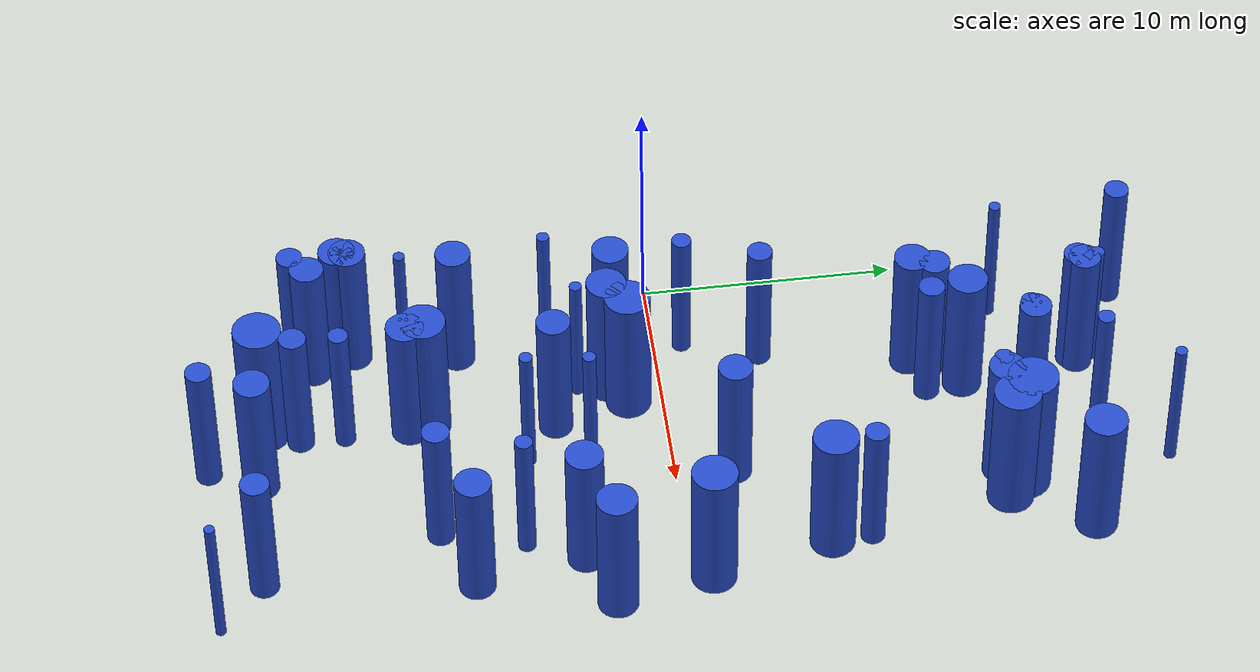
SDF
<sdf version="1.7">
 <world name="default">
  <model name="33">
   <static>1</static>
   <link name="link">
    <inertial>
     <mass>2</mass>
     <inertia><ixx>6.14607</ixx><ixy>0</ixy><ixz>0</ixz><iyy>6.14607</iyy><iyz>0</iyz><izz>0.292135</izz></inertia>
    </inertial>
    <collision name="collision">
     <geometry><cylinder><length>6</length><radius>0.540495</radius></cylinder></geometry>
     <surface><contact><collide_without_contact>1</collide_without_contact></contact></surface>
    </collision>
    <visual name="visual">
     <geometry><cylinder><length>6</length><radius>0.540495</radius></cylinder></geometry>
     <material>
      <script><uri>file://media/materials/scripts/gazebo.material</uri><name>Gazebo/Blue</name></script>
     </material>
    </visual>
    <gravity>0</gravity>
   </link>
   <pose>11.5808 -9.34368 3 0 -0 0</pose>
  </model>
  <model name="35">
   <static>1</static>
   <link name="link">
    <inertial>
     <mass>2</mass>
     <inertia><ixx>6.0268</ixx><ixy>0</ixy><ixz>0</ixz><iyy>6.0268</iyy><iyz>0</iyz><izz>0.0535936</izz></inertia>
    </inertial>
    <collision name="collision">
     <geometry><cylinder><length>6</length><radius>0.231503</radius></cylinder></geometry>
     <surface><contact><collide_without_contact>1</collide_without_contact></contact></surface>
    </collision>
    <visual name="visual">
     <geometry><cylinder><length>6</length><radius>0.231503</radius></cylinder></geometry>
     <material>
      <script><uri>file://media/materials/scripts/gazebo.material</uri><name>Gazebo/Blue</name></script>
     </material>
    </visual>
    <gravity>0</gravity>
   </link>
   <pose>11.2769 19.3033 3 0 -0 0</pose>
  </model>
  <model name="46">
   <static>1</static>
   <link name="link">
    <inertial>
     <mass>2</mass>
     <inertia><ixx>6.25968</ixx><ixy>0</ixy><ixz>0</ixz><iyy>6.25968</iyy><iyz>0</iyz><izz>0.51936</izz></inertia>
    </inertial>
    <collision name="collision">
     <geometry><cylinder><length>6</length><radius>0.720666</radius></cylinder></geometry>
     <surface><contact><collide_without_contact>1</collide_without_contact></contact></surface>
    </collision>
    <visual name="visual">
     <geometry><cylinder><length>6</length><radius>0.720666</radius></cylinder></geometry>
     <material>
      <script><uri>file://media/materials/scripts/gazebo.material</uri><name>Gazebo/Blue</name></script>
     </material>
    </visual>
    <gravity>0</gravity>
   </link>
   <pose>1.87089 -11.8641 3 0 -0 0</pose>
  </model>
  <model name="58">
   <static>1</static>
   <link name="link">
    <inertial>
     <mass>2</mass>
     <inertia><ixx>6.48296</ixx><ixy>0</ixy><ixz>0</ixz><iyy>6.48296</iyy><iyz>0</iyz><izz>0.96592</izz></inertia>
    </inertial>
    <collision name="collision">
     <geometry><cylinder><length>6</length><radius>0.982812</radius></cylinder></geometry>
     <surface><contact><collide_without_contact>1</collide_without_contact></contact></surface>
    </collision>
    <visual name="visual">
     <geometry><cylinder><length>6</length><radius>0.982812</radius></cylinder></geometry>
     <material>
      <script><uri>file://media/materials/scripts/gazebo.material</uri><name>Gazebo/Blue</name></script>
     </material>
    </visual>
    <gravity>0</gravity>
   </link>
   <pose>11.804 13.4618 3 0 -0 0</pose>
  </model>
  <model name="60">
   <static>1</static>
   <link name="link">
    <inertial>
     <mass>2</mass>
     <inertia><ixx>6.39524</ixx><ixy>0</ixy><ixz>0</ixz><iyy>6.39524</iyy><iyz>0</iyz><izz>0.790477</izz></inertia>
    </inertial>
    <collision name="collision">
     <geometry><cylinder><length>6</length><radius>0.889088</radius></cylinder></geometry>
     <surface><contact><collide_without_contact>1</collide_without_contact></contact></surface>
    </collision>
    <visual name="visual">
     <geometry><cylinder><length>6</length><radius>0.889088</radius></cylinder></geometry>
     <material>
      <script><uri>file://media/materials/scripts/gazebo.material</uri><name>Gazebo/Blue</name></script>
     </material>
    </visual>
    <gravity>0</gravity>
   </link>
   <pose>14.9939 0.797519 3 0 -0 0</pose>
  </model>
  <model name="66">
   <static>1</static>
   <link name="link">
    <inertial>
     <mass>2</mass>
     <inertia><ixx>6.22425</ixx><ixy>0</ixy><ixz>0</ixz><iyy>6.22425</iyy><iyz>0</iyz><izz>0.448499</izz></inertia>
    </inertial>
    <collision name="collision">
     <geometry><cylinder><length>6</length><radius>0.6697</radius></cylinder></geometry>
     <surface><contact><collide_without_contact>1</collide_without_contact></contact></surface>
    </collision>
    <visual name="visual">
     <geometry><cylinder><length>6</length><radius>0.6697</radius></cylinder></geometry>
     <material>
      <script><uri>file://media/materials/scripts/gazebo.material</uri><name>Gazebo/Blue</name></script>
     </material>
    </visual>
    <gravity>0</gravity>
   </link>
   <pose>2.54749 -13.4917 3 0 -0 0</pose>
  </model>
  <model name="70">
   <static>1</static>
   <link name="link">
    <inertial>
     <mass>2</mass>
     <inertia><ixx>6.07674</ixx><ixy>0</ixy><ixz>0</ixz><iyy>6.07674</iyy><iyz>0</iyz><izz>0.15348</izz></inertia>
    </inertial>
    <collision name="collision">
     <geometry><cylinder><length>6</length><radius>0.391765</radius></cylinder></geometry>
     <surface><contact><collide_without_contact>1</collide_without_contact></contact></surface>
    </collision>
    <visual name="visual">
     <geometry><cylinder><length>6</length><radius>0.391765</radius></cylinder></geometry>
     <material>
      <script><uri>file://media/materials/scripts/gazebo.material</uri><name>Gazebo/Blue</name></script>
     </material>
    </visual>
    <gravity>0</gravity>
   </link>
   <pose>6.17959 -12.5655 3 0 -0 0</pose>
  </model>
  <model name="76">
   <static>1</static>
   <link name="link">
    <inertial>
     <mass>2</mass>
     <inertia><ixx>6.25283</ixx><ixy>0</ixy><ixz>0</ixz><iyy>6.25283</iyy><iyz>0</iyz><izz>0.505667</izz></inertia>
    </inertial>
    <collision name="collision">
     <geometry><cylinder><length>6</length><radius>0.711103</radius></cylinder></geometry>
     <surface><contact><collide_without_contact>1</collide_without_contact></contact></surface>
    </collision>
    <visual name="visual">
     <geometry><cylinder><length>6</length><radius>0.711103</radius></cylinder></geometry>
     <material>
      <script><uri>file://media/materials/scripts/gazebo.material</uri><name>Gazebo/Blue</name></script>
     </material>
    </visual>
    <gravity>0</gravity>
   </link>
   <pose>8.20094 -16.0225 3 0 -0 0</pose>
  </model>
  <model name="77">
   <static>1</static>
   <link name="link">
    <inertial>
     <mass>2</mass>
     <inertia>
      <ixx>6.03098</ixx>
      <ixy>0</ixy>
      <ixz>0</ixz>
      <iyy>6.03098</iyy>
      <iyz>0</iyz>
      <izz>0.0619636</izz>
     </inertia>
    </inertial>
    <collision name="collision">
     <geometry><cylinder><length>6</length><radius>0.248925</radius></cylinder></geometry>
     <surface><contact><collide_without_contact>1</collide_without_contact></contact></surface>
    </collision>
    <visual name="visual">
     <geometry><cylinder><length>6</length><radius>0.248925</radius></cylinder></geometry>
     <material>
      <script><uri>file://media/materials/scripts/gazebo.material</uri><name>Gazebo/Blue</name></script>
     </material>
    </visual>
    <gravity>0</gravity>
   </link>
   <pose>2.03012 -4.19481 3 0 -0 0</pose>
  </model>
  <model name="82">
   <static>1</static>
   <link name="link">
    <inertial>
     <mass>2</mass>
     <inertia><ixx>6.27494</ixx><ixy>0</ixy><ixz>0</ixz><iyy>6.27494</iyy><iyz>0</iyz><izz>0.549877</izz></inertia>
    </inertial>
    <collision name="collision">
     <geometry><cylinder><length>6</length><radius>0.741537</radius></cylinder></geometry>
     <surface><contact><collide_without_contact>1</collide_without_contact></contact></surface>
    </collision>
    <visual name="visual">
     <geometry><cylinder><length>6</length><radius>0.741537</radius></cylinder></geometry>
     <material>
      <script><uri>file://media/materials/scripts/gazebo.material</uri><name>Gazebo/Blue</name></script>
     </material>
    </visual>
    <gravity>0</gravity>
   </link>
   <pose>13.4562 -3.93051 3 0 -0 0</pose>
  </model>
  <model name="93">
   <static>1</static>
   <link name="link">
    <inertial>
     <mass>2</mass>
     <inertia>
      <ixx>6.02703</ixx>
      <ixy>0</ixy>
      <ixz>0</ixz>
      <iyy>6.02703</iyy>
      <iyz>0</iyz>
      <izz>0.0540589</izz>
     </inertia>
    </inertial>
    <collision name="collision">
     <geometry><cylinder><length>6</length><radius>0.232506</radius></cylinder></geometry>
     <surface><contact><collide_without_contact>1</collide_without_contact></contact></surface>
    </collision>
    <visual name="visual">
     <geometry><cylinder><length>6</length><radius>0.232506</radius></cylinder></geometry>
     <material>
      <script><uri>file://media/materials/scripts/gazebo.material</uri><name>Gazebo/Blue</name></script>
     </material>
    </visual>
    <gravity>0</gravity>
   </link>
   <pose>2.75391 13.5982 3 0 -0 0</pose>
  </model>
  <model name="100">
   <static>1</static>
   <link name="link">
    <inertial>
     <mass>2</mass>
     <inertia><ixx>6.26324</ixx><ixy>0</ixy><ixz>0</ixz><iyy>6.26324</iyy><iyz>0</iyz><izz>0.526477</izz></inertia>
    </inertial>
    <collision name="collision">
     <geometry><cylinder><length>6</length><radius>0.725588</radius></cylinder></geometry>
     <surface><contact><collide_without_contact>1</collide_without_contact></contact></surface>
    </collision>
    <visual name="visual">
     <geometry><cylinder><length>6</length><radius>0.725588</radius></cylinder></geometry>
     <material>
      <script><uri>file://media/materials/scripts/gazebo.material</uri><name>Gazebo/Blue</name></script>
     </material>
    </visual>
    <gravity>0</gravity>
   </link>
   <pose>1.74931 -12.2597 3 0 -0 0</pose>
  </model>
  <model name="101">
   <static>1</static>
   <link name="link">
    <inertial>
     <mass>2</mass>
     <inertia><ixx>6.08143</ixx><ixy>0</ixy><ixz>0</ixz><iyy>6.08143</iyy><iyz>0</iyz><izz>0.162867</izz></inertia>
    </inertial>
    <collision name="collision">
     <geometry><cylinder><length>6</length><radius>0.403568</radius></cylinder></geometry>
     <surface><contact><collide_without_contact>1</collide_without_contact></contact></surface>
    </collision>
    <visual name="visual">
     <geometry><cylinder><length>6</length><radius>0.403568</radius></cylinder></geometry>
     <material>
      <script><uri>file://media/materials/scripts/gazebo.material</uri><name>Gazebo/Blue</name></script>
     </material>
    </visual>
    <gravity>0</gravity>
   </link>
   <pose>7.91269 14.1049 3 0 -0 0</pose>
  </model>
  <model name="103">
   <static>1</static>
   <link name="link">
    <inertial>
     <mass>2</mass>
     <inertia><ixx>6.25403</ixx><ixy>0</ixy><ixz>0</ixz><iyy>6.25403</iyy><iyz>0</iyz><izz>0.508067</izz></inertia>
    </inertial>
    <collision name="collision">
     <geometry><cylinder><length>6</length><radius>0.712788</radius></cylinder></geometry>
     <surface><contact><collide_without_contact>1</collide_without_contact></contact></surface>
    </collision>
    <visual name="visual">
     <geometry><cylinder><length>6</length><radius>0.712788</radius></cylinder></geometry>
     <material>
      <script><uri>file://media/materials/scripts/gazebo.material</uri><name>Gazebo/Blue</name></script>
     </material>
    </visual>
    <gravity>0</gravity>
   </link>
   <pose>14.2634 -8.21294 3 0 -0 0</pose>
  </model>
  <model name="104">
   <static>1</static>
   <link name="link">
    <inertial>
     <mass>2</mass>
     <inertia>
      <ixx>6.02987</ixx>
      <ixy>0</ixy>
      <ixz>0</ixz>
      <iyy>6.02987</iyy>
      <iyz>0</iyz>
      <izz>0.0597419</izz>
     </inertia>
    </inertial>
    <collision name="collision">
     <geometry><cylinder><length>6</length><radius>0.244422</radius></cylinder></geometry>
     <surface><contact><collide_without_contact>1</collide_without_contact></contact></surface>
    </collision>
    <visual name="visual">
     <geometry><cylinder><length>6</length><radius>0.244422</radius></cylinder></geometry>
     <material>
      <script><uri>file://media/materials/scripts/gazebo.material</uri><name>Gazebo/Blue</name></script>
     </material>
    </visual>
    <gravity>0</gravity>
   </link>
   <pose>4.82024 -3.24521 3 0 -0 0</pose>
  </model>
  <model name="111">
   <static>1</static>
   <link name="link">
    <inertial>
     <mass>2</mass>
     <inertia><ixx>6.11059</ixx><ixy>0</ixy><ixz>0</ixz><iyy>6.11059</iyy><iyz>0</iyz><izz>0.221175</izz></inertia>
    </inertial>
    <collision name="collision">
     <geometry><cylinder><length>6</length><radius>0.470292</radius></cylinder></geometry>
     <surface><contact><collide_without_contact>1</collide_without_contact></contact></surface>
    </collision>
    <visual name="visual">
     <geometry><cylinder><length>6</length><radius>0.470292</radius></cylinder></geometry>
     <material>
      <script><uri>file://media/materials/scripts/gazebo.material</uri><name>Gazebo/Blue</name></script>
     </material>
    </visual>
    <gravity>0</gravity>
   </link>
   <pose>13.7857 7.1295 3 0 -0 0</pose>
  </model>
  <model name="112">
   <static>1</static>
   <link name="link">
    <inertial>
     <mass>2</mass>
     <inertia><ixx>6.34516</ixx><ixy>0</ixy><ixz>0</ixz><iyy>6.34516</iyy><iyz>0</iyz><izz>0.690317</izz></inertia>
    </inertial>
    <collision name="collision">
     <geometry><cylinder><length>6</length><radius>0.830853</radius></cylinder></geometry>
     <surface><contact><collide_without_contact>1</collide_without_contact></contact></surface>
    </collision>
    <visual name="visual">
     <geometry><cylinder><length>6</length><radius>0.830853</radius></cylinder></geometry>
     <material>
      <script><uri>file://media/materials/scripts/gazebo.material</uri><name>Gazebo/Blue</name></script>
     </material>
    </visual>
    <gravity>0</gravity>
   </link>
   <pose>14.3305 15.7871 3 0 -0 0</pose>
  </model>
  <model name="116">
   <static>1</static>
   <link name="link">
    <inertial>
     <mass>2</mass>
     <inertia>
      <ixx>6.03387</ixx>
      <ixy>0</ixy>
      <ixz>0</ixz>
      <iyy>6.03387</iyy>
      <iyz>0</iyz>
      <izz>0.0677413</izz>
     </inertia>
    </inertial>
    <collision name="collision">
     <geometry><cylinder><length>6</length><radius>0.260272</radius></cylinder></geometry>
     <surface><contact><collide_without_contact>1</collide_without_contact></contact></surface>
    </collision>
    <visual name="visual">
     <geometry><cylinder><length>6</length><radius>0.260272</radius></cylinder></geometry>
     <material>
      <script><uri>file://media/materials/scripts/gazebo.material</uri><name>Gazebo/Blue</name></script>
     </material>
    </visual>
    <gravity>0</gravity>
   </link>
   <pose>5.70113 17.1455 3 0 -0 0</pose>
  </model>
  <model name="118">
   <static>1</static>
   <link name="link">
    <inertial>
     <mass>2</mass>
     <inertia><ixx>6.06948</ixx><ixy>0</ixy><ixz>0</ixz><iyy>6.06948</iyy><iyz>0</iyz><izz>0.138968</izz></inertia>
    </inertial>
    <collision name="collision">
     <geometry><cylinder><length>6</length><radius>0.372784</radius></cylinder></geometry>
     <surface><contact><collide_without_contact>1</collide_without_contact></contact></surface>
    </collision>
    <visual name="visual">
     <geometry><cylinder><length>6</length><radius>0.372784</radius></cylinder></geometry>
     <material>
      <script><uri>file://media/materials/scripts/gazebo.material</uri><name>Gazebo/Blue</name></script>
     </material>
    </visual>
    <gravity>0</gravity>
   </link>
   <pose>10.6507 12.5376 3 0 -0 0</pose>
  </model>
  <model name="122">
   <static>1</static>
   <link name="link">
    <inertial>
     <mass>2</mass>
     <inertia><ixx>6.31002</ixx><ixy>0</ixy><ixz>0</ixz><iyy>6.31002</iyy><iyz>0</iyz><izz>0.620036</izz></inertia>
    </inertial>
    <collision name="collision">
     <geometry><cylinder><length>6</length><radius>0.787423</radius></cylinder></geometry>
     <surface><contact><collide_without_contact>1</collide_without_contact></contact></surface>
    </collision>
    <visual name="visual">
     <geometry><cylinder><length>6</length><radius>0.787423</radius></cylinder></geometry>
     <material>
      <script><uri>file://media/materials/scripts/gazebo.material</uri><name>Gazebo/Blue</name></script>
     </material>
    </visual>
    <gravity>0</gravity>
   </link>
   <pose>4.80916 -2.04735 3 0 -0 0</pose>
  </model>
  <model name="124">
   <static>1</static>
   <link name="link">
    <inertial>
     <mass>2</mass>
     <inertia><ixx>6.03454</ixx><ixy>0</ixy><ixz>0</ixz><iyy>6.03454</iyy><iyz>0</iyz><izz>0.06908</izz></inertia>
    </inertial>
    <collision name="collision">
     <geometry><cylinder><length>6</length><radius>0.262831</radius></cylinder></geometry>
     <surface><contact><collide_without_contact>1</collide_without_contact></contact></surface>
    </collision>
    <visual name="visual">
     <geometry><cylinder><length>6</length><radius>0.262831</radius></cylinder></geometry>
     <material>
      <script><uri>file://media/materials/scripts/gazebo.material</uri><name>Gazebo/Blue</name></script>
     </material>
    </visual>
    <gravity>0</gravity>
   </link>
   <pose>8.25881 -5.55588 3 0 -0 0</pose>
  </model>
  <model name="125">
   <static>1</static>
   <link name="link">
    <inertial>
     <mass>2</mass>
     <inertia><ixx>6.11439</ixx><ixy>0</ixy><ixz>0</ixz><iyy>6.11439</iyy><iyz>0</iyz><izz>0.228773</izz></inertia>
    </inertial>
    <collision name="collision">
     <geometry><cylinder><length>6</length><radius>0.478302</radius></cylinder></geometry>
     <surface><contact><collide_without_contact>1</collide_without_contact></contact></surface>
    </collision>
    <visual name="visual">
     <geometry><cylinder><length>6</length><radius>0.478302</radius></cylinder></geometry>
     <material>
      <script><uri>file://media/materials/scripts/gazebo.material</uri><name>Gazebo/Blue</name></script>
     </material>
    </visual>
    <gravity>0</gravity>
   </link>
   <pose>2.46519 18.5192 3 0 -0 0</pose>
  </model>
  <model name="128">
   <static>1</static>
   <link name="link">
    <inertial>
     <mass>2</mass>
     <inertia><ixx>6.12266</ixx><ixy>0</ixy><ixz>0</ixz><iyy>6.12266</iyy><iyz>0</iyz><izz>0.245326</izz></inertia>
    </inertial>
    <collision name="collision">
     <geometry><cylinder><length>6</length><radius>0.495304</radius></cylinder></geometry>
     <surface><contact><collide_without_contact>1</collide_without_contact></contact></surface>
    </collision>
    <visual name="visual">
     <geometry><cylinder><length>6</length><radius>0.495304</radius></cylinder></geometry>
     <material>
      <script><uri>file://media/materials/scripts/gazebo.material</uri><name>Gazebo/Blue</name></script>
     </material>
    </visual>
    <gravity>0</gravity>
   </link>
   <pose>3.93589 4.09007 3 0 -0 0</pose>
  </model>
  <model name="129">
   <static>1</static>
   <link name="link">
    <inertial>
     <mass>2</mass>
     <inertia><ixx>6.06111</ixx><ixy>0</ixy><ixz>0</ixz><iyy>6.06111</iyy><iyz>0</iyz><izz>0.122216</izz></inertia>
    </inertial>
    <collision name="collision">
     <geometry><cylinder><length>6</length><radius>0.349593</radius></cylinder></geometry>
     <surface><contact><collide_without_contact>1</collide_without_contact></contact></surface>
    </collision>
    <visual name="visual">
     <geometry><cylinder><length>6</length><radius>0.349593</radius></cylinder></geometry>
     <material>
      <script><uri>file://media/materials/scripts/gazebo.material</uri><name>Gazebo/Blue</name></script>
     </material>
    </visual>
    <gravity>0</gravity>
   </link>
   <pose>12.5101 -6.11326 3 0 -0 0</pose>
  </model>
  <model name="135">
   <static>1</static>
   <link name="link">
    <inertial>
     <mass>2</mass>
     <inertia><ixx>6.14356</ixx><ixy>0</ixy><ixz>0</ixz><iyy>6.14356</iyy><iyz>0</iyz><izz>0.287112</izz></inertia>
    </inertial>
    <collision name="collision">
     <geometry><cylinder><length>6</length><radius>0.535828</radius></cylinder></geometry>
     <surface><contact><collide_without_contact>1</collide_without_contact></contact></surface>
    </collision>
    <visual name="visual">
     <geometry><cylinder><length>6</length><radius>0.535828</radius></cylinder></geometry>
     <material>
      <script><uri>file://media/materials/scripts/gazebo.material</uri><name>Gazebo/Blue</name></script>
     </material>
    </visual>
    <gravity>0</gravity>
   </link>
   <pose>6.11183 -14.3165 3 0 -0 0</pose>
  </model>
  <model name="136">
   <static>1</static>
   <link name="link">
    <inertial>
     <mass>2</mass>
     <inertia>
      <ixx>6.03441</ixx>
      <ixy>0</ixy>
      <ixz>0</ixz>
      <iyy>6.03441</iyy>
      <iyz>0</iyz>
      <izz>0.0688206</izz>
     </inertia>
    </inertial>
    <collision name="collision">
     <geometry><cylinder><length>6</length><radius>0.262337</radius></cylinder></geometry>
     <surface><contact><collide_without_contact>1</collide_without_contact></contact></surface>
    </collision>
    <visual name="visual">
     <geometry><cylinder><length>6</length><radius>0.262337</radius></cylinder></geometry>
     <material>
      <script><uri>file://media/materials/scripts/gazebo.material</uri><name>Gazebo/Blue</name></script>
     </material>
    </visual>
    <gravity>0</gravity>
   </link>
   <pose>8.54504 -3.14888 3 0 -0 0</pose>
  </model>
  <model name="137">
   <static>1</static>
   <link name="link">
    <inertial>
     <mass>2</mass>
     <inertia><ixx>6.31419</ixx><ixy>0</ixy><ixz>0</ixz><iyy>6.31419</iyy><iyz>0</iyz><izz>0.628378</izz></inertia>
    </inertial>
    <collision name="collision">
     <geometry><cylinder><length>6</length><radius>0.792703</radius></cylinder></geometry>
     <surface><contact><collide_without_contact>1</collide_without_contact></contact></surface>
    </collision>
    <visual name="visual">
     <geometry><cylinder><length>6</length><radius>0.792703</radius></cylinder></geometry>
     <material>
      <script><uri>file://media/materials/scripts/gazebo.material</uri><name>Gazebo/Blue</name></script>
     </material>
    </visual>
    <gravity>0</gravity>
   </link>
   <pose>15.7955 -2.98909 3 0 -0 0</pose>
  </model>
  <model name="146">
   <static>1</static>
   <link name="link">
    <inertial>
     <mass>2</mass>
     <inertia><ixx>6.2415</ixx><ixy>0</ixy><ixz>0</ixz><iyy>6.2415</iyy><iyz>0</iyz><izz>0.483009</izz></inertia>
    </inertial>
    <collision name="collision">
     <geometry><cylinder><length>6</length><radius>0.694988</radius></cylinder></geometry>
     <surface><contact><collide_without_contact>1</collide_without_contact></contact></surface>
    </collision>
    <visual name="visual">
     <geometry><cylinder><length>6</length><radius>0.694988</radius></cylinder></geometry>
     <material>
      <script><uri>file://media/materials/scripts/gazebo.material</uri><name>Gazebo/Blue</name></script>
     </material>
    </visual>
    <gravity>0</gravity>
   </link>
   <pose>2.46184 -7.7776 3 0 -0 0</pose>
  </model>
  <model name="150">
   <static>1</static>
   <link name="link">
    <inertial>
     <mass>2</mass>
     <inertia><ixx>6.4113</ixx><ixy>0</ixy><ixz>0</ixz><iyy>6.4113</iyy><iyz>0</iyz><izz>0.822603</izz></inertia>
    </inertial>
    <collision name="collision">
     <geometry><cylinder><length>6</length><radius>0.906974</radius></cylinder></geometry>
     <surface><contact><collide_without_contact>1</collide_without_contact></contact></surface>
    </collision>
    <visual name="visual">
     <geometry><cylinder><length>6</length><radius>0.906974</radius></cylinder></geometry>
     <material>
      <script><uri>file://media/materials/scripts/gazebo.material</uri><name>Gazebo/Blue</name></script>
     </material>
    </visual>
    <gravity>0</gravity>
   </link>
   <pose>5.88814 -9.29541 3 0 -0 0</pose>
  </model>
  <model name="164">
   <static>1</static>
   <link name="link">
    <inertial>
     <mass>2</mass>
     <inertia><ixx>6.19311</ixx><ixy>0</ixy><ixz>0</ixz><iyy>6.19311</iyy><iyz>0</iyz><izz>0.386216</izz></inertia>
    </inertial>
    <collision name="collision">
     <geometry><cylinder><length>6</length><radius>0.621462</radius></cylinder></geometry>
     <surface><contact><collide_without_contact>1</collide_without_contact></contact></surface>
    </collision>
    <visual name="visual">
     <geometry><cylinder><length>6</length><radius>0.621462</radius></cylinder></geometry>
     <material>
      <script><uri>file://media/materials/scripts/gazebo.material</uri><name>Gazebo/Blue</name></script>
     </material>
    </visual>
    <gravity>0</gravity>
   </link>
   <pose>8.18454 14.2281 3 0 -0 0</pose>
  </model>
  <model name="173">
   <static>1</static>
   <link name="link">
    <inertial>
     <mass>2</mass>
     <inertia><ixx>6.22393</ixx><ixy>0</ixy><ixz>0</ixz><iyy>6.22393</iyy><iyz>0</iyz><izz>0.447861</izz></inertia>
    </inertial>
    <collision name="collision">
     <geometry><cylinder><length>6</length><radius>0.669224</radius></cylinder></geometry>
     <surface><contact><collide_without_contact>1</collide_without_contact></contact></surface>
    </collision>
    <visual name="visual">
     <geometry><cylinder><length>6</length><radius>0.669224</radius></cylinder></geometry>
     <material>
      <script><uri>file://media/materials/scripts/gazebo.material</uri><name>Gazebo/Blue</name></script>
     </material>
    </visual>
    <gravity>0</gravity>
   </link>
   <pose>6.5819 -4.31665 3 0 -0 0</pose>
  </model>
  <model name="189">
   <static>1</static>
   <link name="link">
    <inertial>
     <mass>2</mass>
     <inertia><ixx>6.30395</ixx><ixy>0</ixy><ixz>0</ixz><iyy>6.30395</iyy><iyz>0</iyz><izz>0.607907</izz></inertia>
    </inertial>
    <collision name="collision">
     <geometry><cylinder><length>6</length><radius>0.779684</radius></cylinder></geometry>
     <surface><contact><collide_without_contact>1</collide_without_contact></contact></surface>
    </collision>
    <visual name="visual">
     <geometry><cylinder><length>6</length><radius>0.779684</radius></cylinder></geometry>
     <material>
      <script><uri>file://media/materials/scripts/gazebo.material</uri><name>Gazebo/Blue</name></script>
     </material>
    </visual>
    <gravity>0</gravity>
   </link>
   <pose>6.45252 11.8783 3 0 -0 0</pose>
  </model>
  <model name="190">
   <static>1</static>
   <link name="link">
    <inertial>
     <mass>2</mass>
     <inertia><ixx>6.16154</ixx><ixy>0</ixy><ixz>0</ixz><iyy>6.16154</iyy><iyz>0</iyz><izz>0.323089</izz></inertia>
    </inertial>
    <collision name="collision">
     <geometry><cylinder><length>6</length><radius>0.568409</radius></cylinder></geometry>
     <surface><contact><collide_without_contact>1</collide_without_contact></contact></surface>
    </collision>
    <visual name="visual">
     <geometry><cylinder><length>6</length><radius>0.568409</radius></cylinder></geometry>
     <material>
      <script><uri>file://media/materials/scripts/gazebo.material</uri><name>Gazebo/Blue</name></script>
     </material>
    </visual>
    <gravity>0</gravity>
   </link>
   <pose>13.2465 -16.2651 3 0 -0 0</pose>
  </model>
  <model name="200">
   <static>1</static>
   <link name="link">
    <inertial>
     <mass>2</mass>
     <inertia><ixx>6.39363</ixx><ixy>0</ixy><ixz>0</ixz><iyy>6.39363</iyy><iyz>0</iyz><izz>0.78726</izz></inertia>
    </inertial>
    <collision name="collision">
     <geometry><cylinder><length>6</length><radius>0.887277</radius></cylinder></geometry>
     <surface><contact><collide_without_contact>1</collide_without_contact></contact></surface>
    </collision>
    <visual name="visual">
     <geometry><cylinder><length>6</length><radius>0.887277</radius></cylinder></geometry>
     <material>
      <script><uri>file://media/materials/scripts/gazebo.material</uri><name>Gazebo/Blue</name></script>
     </material>
    </visual>
    <gravity>0</gravity>
   </link>
   <pose>13.8505 5.55022 3 0 -0 0</pose>
  </model>
  <model name="210">
   <static>1</static>
   <link name="link">
    <inertial>
     <mass>2</mass>
     <inertia><ixx>6.4238</ixx><ixy>0</ixy><ixz>0</ixz><iyy>6.4238</iyy><iyz>0</iyz><izz>0.847593</izz></inertia>
    </inertial>
    <collision name="collision">
     <geometry><cylinder><length>6</length><radius>0.920648</radius></cylinder></geometry>
     <surface><contact><collide_without_contact>1</collide_without_contact></contact></surface>
    </collision>
    <visual name="visual">
     <geometry><cylinder><length>6</length><radius>0.920648</radius></cylinder></geometry>
     <material>
      <script><uri>file://media/materials/scripts/gazebo.material</uri><name>Gazebo/Blue</name></script>
     </material>
    </visual>
    <gravity>0</gravity>
   </link>
   <pose>12.5232 12.7425 3 0 -0 0</pose>
  </model>
  <model name="215">
   <static>1</static>
   <link name="link">
    <inertial>
     <mass>2</mass>
     <inertia><ixx>6.12866</ixx><ixy>0</ixy><ixz>0</ixz><iyy>6.12866</iyy><iyz>0</iyz><izz>0.257327</izz></inertia>
    </inertial>
    <collision name="collision">
     <geometry><cylinder><length>6</length><radius>0.507274</radius></cylinder></geometry>
     <surface><contact><collide_without_contact>1</collide_without_contact></contact></surface>
    </collision>
    <visual name="visual">
     <geometry><cylinder><length>6</length><radius>0.507274</radius></cylinder></geometry>
     <material>
      <script><uri>file://media/materials/scripts/gazebo.material</uri><name>Gazebo/Blue</name></script>
     </material>
    </visual>
    <gravity>0</gravity>
   </link>
   <pose>7.36526 -18.0001 3 0 -0 0</pose>
  </model>
  <model name="225">
   <static>1</static>
   <link name="link">
    <inertial>
     <mass>2</mass>
     <inertia><ixx>6.16252</ixx><ixy>0</ixy><ixz>0</ixz><iyy>6.16252</iyy><iyz>0</iyz><izz>0.325037</izz></inertia>
    </inertial>
    <collision name="collision">
     <geometry><cylinder><length>6</length><radius>0.57012</radius></cylinder></geometry>
     <surface><contact><collide_without_contact>1</collide_without_contact></contact></surface>
    </collision>
    <visual name="visual">
     <geometry><cylinder><length>6</length><radius>0.57012</radius></cylinder></geometry>
     <material>
      <script><uri>file://media/materials/scripts/gazebo.material</uri><name>Gazebo/Blue</name></script>
     </material>
    </visual>
    <gravity>0</gravity>
   </link>
   <pose>5.7162 16.3797 3 0 -0 0</pose>
  </model>
  <model name="226">
   <static>1</static>
   <link name="link">
    <inertial>
     <mass>2</mass>
     <inertia><ixx>6.13119</ixx><ixy>0</ixy><ixz>0</ixz><iyy>6.13119</iyy><iyz>0</iyz><izz>0.262389</izz></inertia>
    </inertial>
    <collision name="collision">
     <geometry><cylinder><length>6</length><radius>0.512239</radius></cylinder></geometry>
     <surface><contact><collide_without_contact>1</collide_without_contact></contact></surface>
    </collision>
    <visual name="visual">
     <geometry><cylinder><length>6</length><radius>0.512239</radius></cylinder></geometry>
     <material>
      <script><uri>file://media/materials/scripts/gazebo.material</uri><name>Gazebo/Blue</name></script>
     </material>
    </visual>
    <gravity>0</gravity>
   </link>
   <pose>1.82006 -14.1003 3 0 -0 0</pose>
  </model>
  <model name="230">
   <static>1</static>
   <link name="link">
    <inertial>
     <mass>2</mass>
     <inertia><ixx>6.056</ixx><ixy>0</ixy><ixz>0</ixz><iyy>6.056</iyy><iyz>0</iyz><izz>0.111992</izz></inertia>
    </inertial>
    <collision name="collision">
     <geometry><cylinder><length>6</length><radius>0.334652</radius></cylinder></geometry>
     <surface><contact><collide_without_contact>1</collide_without_contact></contact></surface>
    </collision>
    <visual name="visual">
     <geometry><cylinder><length>6</length><radius>0.334652</radius></cylinder></geometry>
     <material>
      <script><uri>file://media/materials/scripts/gazebo.material</uri><name>Gazebo/Blue</name></script>
     </material>
    </visual>
    <gravity>0</gravity>
   </link>
   <pose>9.13098 16.8197 3 0 -0 0</pose>
  </model>
  <model name="233">
   <static>1</static>
   <link name="link">
    <inertial>
     <mass>2</mass>
     <inertia><ixx>6.4474</ixx><ixy>0</ixy><ixz>0</ixz><iyy>6.4474</iyy><iyz>0</iyz><izz>0.894799</izz></inertia>
    </inertial>
    <collision name="collision">
     <geometry><cylinder><length>6</length><radius>0.945938</radius></cylinder></geometry>
     <surface><contact><collide_without_contact>1</collide_without_contact></contact></surface>
    </collision>
    <visual name="visual">
     <geometry><cylinder><length>6</length><radius>0.945938</radius></cylinder></geometry>
     <material>
      <script><uri>file://media/materials/scripts/gazebo.material</uri><name>Gazebo/Blue</name></script>
     </material>
    </visual>
    <gravity>0</gravity>
   </link>
   <pose>5.50884 -15.6388 3 0 -0 0</pose>
  </model>
  <model name="248">
   <static>1</static>
   <link name="link">
    <inertial>
     <mass>2</mass>
     <inertia>
      <ixx>6.02016</ixx>
      <ixy>0</ixy>
      <ixz>0</ixz>
      <iyy>6.02016</iyy>
      <iyz>0</iyz>
      <izz>0.0403248</izz>
     </inertia>
    </inertial>
    <collision name="collision">
     <geometry><cylinder><length>6</length><radius>0.20081</radius></cylinder></geometry>
     <surface><contact><collide_without_contact>1</collide_without_contact></contact></surface>
    </collision>
    <visual name="visual">
     <geometry><cylinder><length>6</length><radius>0.20081</radius></cylinder></geometry>
     <material>
      <script><uri>file://media/materials/scripts/gazebo.material</uri><name>Gazebo/Blue</name></script>
     </material>
    </visual>
    <gravity>0</gravity>
   </link>
   <pose>15.2202 -18.0726 3 0 -0 0</pose>
  </model>
  <model name="260">
   <static>1</static>
   <link name="link">
    <inertial>
     <mass>2</mass>
     <inertia><ixx>6.07321</ixx><ixy>0</ixy><ixz>0</ixz><iyy>6.07321</iyy><iyz>0</iyz><izz>0.146415</izz></inertia>
    </inertial>
    <collision name="collision">
     <geometry><cylinder><length>6</length><radius>0.382642</radius></cylinder></geometry>
     <surface><contact><collide_without_contact>1</collide_without_contact></contact></surface>
    </collision>
    <visual name="visual">
     <geometry><cylinder><length>6</length><radius>0.382642</radius></cylinder></geometry>
     <material>
      <script><uri>file://media/materials/scripts/gazebo.material</uri><name>Gazebo/Blue</name></script>
     </material>
    </visual>
    <gravity>0</gravity>
   </link>
   <pose>2.93984 1.14153 3 0 -0 0</pose>
  </model>
  <model name="268">
   <static>1</static>
   <link name="link">
    <inertial>
     <mass>2</mass>
     <inertia>
      <ixx>6.02511</ixx>
      <ixy>0</ixy>
      <ixz>0</ixz>
      <iyy>6.02511</iyy>
      <iyz>0</iyz>
      <izz>0.0502242</izz>
     </inertia>
    </inertial>
    <collision name="collision">
     <geometry><cylinder><length>6</length><radius>0.224107</radius></cylinder></geometry>
     <surface><contact><collide_without_contact>1</collide_without_contact></contact></surface>
    </collision>
    <visual name="visual">
     <geometry><cylinder><length>6</length><radius>0.224107</radius></cylinder></geometry>
     <material>
      <script><uri>file://media/materials/scripts/gazebo.material</uri><name>Gazebo/Blue</name></script>
     </material>
    </visual>
    <gravity>0</gravity>
   </link>
   <pose>2.31614 -9.86587 3 0 -0 0</pose>
  </model>
  <model name="270">
   <static>1</static>
   <link name="link">
    <inertial>
     <mass>2</mass>
     <inertia><ixx>6.40871</ixx><ixy>0</ixy><ixz>0</ixz><iyy>6.40871</iyy><iyz>0</iyz><izz>0.817428</izz></inertia>
    </inertial>
    <collision name="collision">
     <geometry><cylinder><length>6</length><radius>0.904117</radius></cylinder></geometry>
     <surface><contact><collide_without_contact>1</collide_without_contact></contact></surface>
    </collision>
    <visual name="visual">
     <geometry><cylinder><length>6</length><radius>0.904117</radius></cylinder></geometry>
     <material>
      <script><uri>file://media/materials/scripts/gazebo.material</uri><name>Gazebo/Blue</name></script>
     </material>
    </visual>
    <gravity>0</gravity>
   </link>
   <pose>5.67637 -1.32476 3 0 -0 0</pose>
  </model>
  <model name="273">
   <static>1</static>
   <link name="link">
    <inertial>
     <mass>2</mass>
     <inertia><ixx>6.11422</ixx><ixy>0</ixy><ixz>0</ixz><iyy>6.11422</iyy><iyz>0</iyz><izz>0.228433</izz></inertia>
    </inertial>
    <collision name="collision">
     <geometry><cylinder><length>6</length><radius>0.477947</radius></cylinder></geometry>
     <surface><contact><collide_without_contact>1</collide_without_contact></contact></surface>
    </collision>
    <visual name="visual">
     <geometry><cylinder><length>6</length><radius>0.477947</radius></cylinder></geometry>
     <material>
      <script><uri>file://media/materials/scripts/gazebo.material</uri><name>Gazebo/Blue</name></script>
     </material>
    </visual>
    <gravity>0</gravity>
   </link>
   <pose>1.92297 -12.0735 3 0 -0 0</pose>
  </model>
  <model name="274">
   <static>1</static>
   <link name="link">
    <inertial>
     <mass>2</mass>
     <inertia><ixx>6.20003</ixx><ixy>0</ixy><ixz>0</ixz><iyy>6.20003</iyy><iyz>0</iyz><izz>0.400053</izz></inertia>
    </inertial>
    <collision name="collision">
     <geometry><cylinder><length>6</length><radius>0.632498</radius></cylinder></geometry>
     <surface><contact><collide_without_contact>1</collide_without_contact></contact></surface>
    </collision>
    <visual name="visual">
     <geometry><cylinder><length>6</length><radius>0.632498</radius></cylinder></geometry>
     <material>
      <script><uri>file://media/materials/scripts/gazebo.material</uri><name>Gazebo/Blue</name></script>
     </material>
    </visual>
    <gravity>0</gravity>
   </link>
   <pose>5.88997 16.5837 3 0 -0 0</pose>
  </model>
  <model name="281">
   <static>1</static>
   <link name="link">
    <inertial>
     <mass>2</mass>
     <inertia><ixx>6.22358</ixx><ixy>0</ixy><ixz>0</ixz><iyy>6.22358</iyy><iyz>0</iyz><izz>0.447169</izz></inertia>
    </inertial>
    <collision name="collision">
     <geometry><cylinder><length>6</length><radius>0.668707</radius></cylinder></geometry>
     <surface><contact><collide_without_contact>1</collide_without_contact></contact></surface>
    </collision>
    <visual name="visual">
     <geometry><cylinder><length>6</length><radius>0.668707</radius></cylinder></geometry>
     <material>
      <script><uri>file://media/materials/scripts/gazebo.material</uri><name>Gazebo/Blue</name></script>
     </material>
    </visual>
    <gravity>0</gravity>
   </link>
   <pose>9.83788 2.31189 3 0 -0 0</pose>
  </model>
  <model name="285">
   <static>1</static>
   <link name="link">
    <inertial>
     <mass>2</mass>
     <inertia><ixx>6.25436</ixx><ixy>0</ixy><ixz>0</ixz><iyy>6.25436</iyy><iyz>0</iyz><izz>0.508711</izz></inertia>
    </inertial>
    <collision name="collision">
     <geometry><cylinder><length>6</length><radius>0.71324</radius></cylinder></geometry>
     <surface><contact><collide_without_contact>1</collide_without_contact></contact></surface>
    </collision>
    <visual name="visual">
     <geometry><cylinder><length>6</length><radius>0.71324</radius></cylinder></geometry>
     <material>
      <script><uri>file://media/materials/scripts/gazebo.material</uri><name>Gazebo/Blue</name></script>
     </material>
    </visual>
    <gravity>0</gravity>
   </link>
   <pose>5.0446 9.94008 3 0 -0 0</pose>
  </model>
  <model name="294">
   <static>1</static>
   <link name="link">
    <inertial>
     <mass>2</mass>
     <inertia><ixx>6.13087</ixx><ixy>0</ixy><ixz>0</ixz><iyy>6.13087</iyy><iyz>0</iyz><izz>0.261747</izz></inertia>
    </inertial>
    <collision name="collision">
     <geometry><cylinder><length>6</length><radius>0.511612</radius></cylinder></geometry>
     <surface><contact><collide_without_contact>1</collide_without_contact></contact></surface>
    </collision>
    <visual name="visual">
     <geometry><cylinder><length>6</length><radius>0.511612</radius></cylinder></geometry>
     <material>
      <script><uri>file://media/materials/scripts/gazebo.material</uri><name>Gazebo/Blue</name></script>
     </material>
    </visual>
    <gravity>0</gravity>
   </link>
   <pose>6.68126 10.4283 3 0 -0 0</pose>
  </model>
  <model name="300">
   <static>1</static>
   <link name="link">
    <inertial>
     <mass>2</mass>
     <inertia><ixx>6.26118</ixx><ixy>0</ixy><ixz>0</ixz><iyy>6.26118</iyy><iyz>0</iyz><izz>0.522364</izz></inertia>
    </inertial>
    <collision name="collision">
     <geometry><cylinder><length>6</length><radius>0.722747</radius></cylinder></geometry>
     <surface><contact><collide_without_contact>1</collide_without_contact></contact></surface>
    </collision>
    <visual name="visual">
     <geometry><cylinder><length>6</length><radius>0.722747</radius></cylinder></geometry>
     <material>
      <script><uri>file://media/materials/scripts/gazebo.material</uri><name>Gazebo/Blue</name></script>
     </material>
    </visual>
    <gravity>0</gravity>
   </link>
   <pose>3.06768 -1.67805 3 0 -0 0</pose>
  </model>
  <model name="303">
   <static>1</static>
   <link name="link">
    <inertial>
     <mass>2</mass>
     <inertia><ixx>6.25805</ixx><ixy>0</ixy><ixz>0</ixz><iyy>6.25805</iyy><iyz>0</iyz><izz>0.516096</izz></inertia>
    </inertial>
    <collision name="collision">
     <geometry><cylinder><length>6</length><radius>0.718398</radius></cylinder></geometry>
     <surface><contact><collide_without_contact>1</collide_without_contact></contact></surface>
    </collision>
    <visual name="visual">
     <geometry><cylinder><length>6</length><radius>0.718398</radius></cylinder></geometry>
     <material>
      <script><uri>file://media/materials/scripts/gazebo.material</uri><name>Gazebo/Blue</name></script>
     </material>
    </visual>
    <gravity>0</gravity>
   </link>
   <pose>11.1527 12.5937 3 0 -0 0</pose>
  </model>
  <model name="309">
   <static>1</static>
   <link name="link">
    <inertial>
     <mass>2</mass>
     <inertia><ixx>6.27584</ixx><ixy>0</ixy><ixz>0</ixz><iyy>6.27584</iyy><iyz>0</iyz><izz>0.551685</izz></inertia>
    </inertial>
    <collision name="collision">
     <geometry><cylinder><length>6</length><radius>0.742755</radius></cylinder></geometry>
     <surface><contact><collide_without_contact>1</collide_without_contact></contact></surface>
    </collision>
    <visual name="visual">
     <geometry><cylinder><length>6</length><radius>0.742755</radius></cylinder></geometry>
     <material>
      <script><uri>file://media/materials/scripts/gazebo.material</uri><name>Gazebo/Blue</name></script>
     </material>
    </visual>
    <gravity>0</gravity>
   </link>
   <pose>6.094 -10.0026 3 0 -0 0</pose>
  </model>
  <model name="314">
   <static>1</static>
   <link name="link">
    <inertial>
     <mass>2</mass>
     <inertia><ixx>6.18487</ixx><ixy>0</ixy><ixz>0</ixz><iyy>6.18487</iyy><iyz>0</iyz><izz>0.36975</izz></inertia>
    </inertial>
    <collision name="collision">
     <geometry><cylinder><length>6</length><radius>0.60807</radius></cylinder></geometry>
     <surface><contact><collide_without_contact>1</collide_without_contact></contact></surface>
    </collision>
    <visual name="visual">
     <geometry><cylinder><length>6</length><radius>0.60807</radius></cylinder></geometry>
     <material>
      <script><uri>file://media/materials/scripts/gazebo.material</uri><name>Gazebo/Blue</name></script>
     </material>
    </visual>
    <gravity>0</gravity>
   </link>
   <pose>5.37984 10.7478 3 0 -0 0</pose>
  </model>
 </world>
</sdf>
